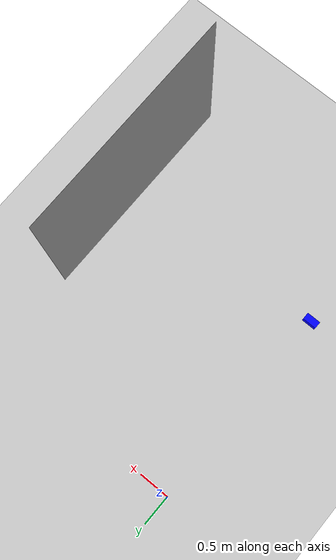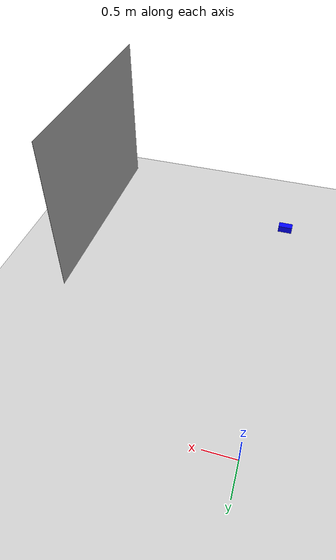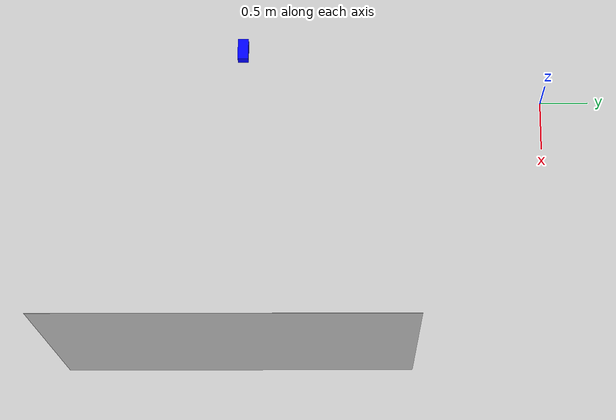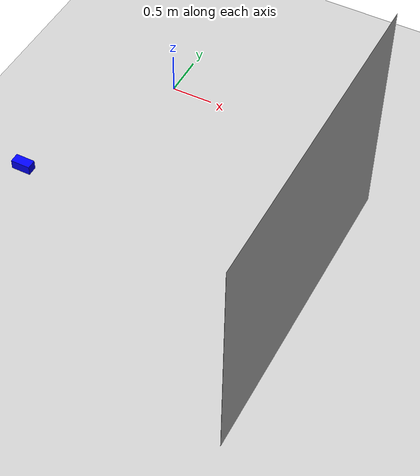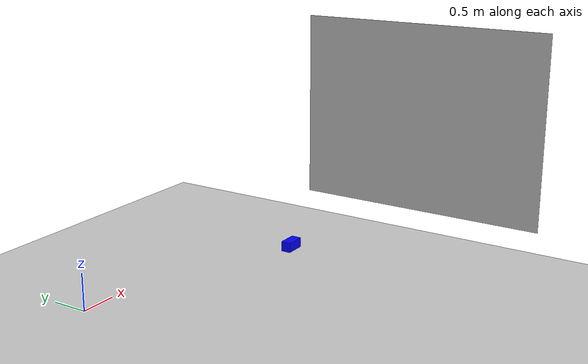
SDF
<!-- 声明这是一个 SDF 仿真世界文件，版本使用 Gazebo 11 支持的 1.6。 -->
<sdf version="1.6">
  <!-- 定义一个名为 yolo_camera_world 的 Gazebo 世界。 -->
  <world name="yolo_camera_world">
    <!-- 引入太阳光模型，让仿真世界中有基础光照。 -->
    <include>
      <!-- 使用 Gazebo 默认模型库中的 sun。 -->
      <uri>model://sun</uri>
    </include>
    <!-- 引入地面模型，让相机前方有可见参考平面。 -->
    <include>
      <!-- 使用 Gazebo 默认模型库中的 ground_plane。 -->
      <uri>model://ground_plane</uri>
    </include>
    <!-- 创建一个静态模型，用来承载虚拟相机。 -->
    <model name="fixed_camera_model">
      <!-- 设置为静态模型，表示它不会受重力或碰撞影响而移动。 -->
      <static>true</static>
      <!-- 创建一个相机所在的刚体链接。 -->
      <link name="camera_link">
        <!-- 设置相机位置和姿态：x=0，y=-3，z=1.5，朝向世界前方。 -->
        <pose>0 -3 1.5 0 0 0</pose>
        <!-- 给相机链接添加一个可见的小盒子，方便在 Gazebo GUI 中识别相机位置。 -->
        <visual name="camera_body_visual">
          <!-- 定义小盒子的形状。 -->
          <geometry>
            <!-- 使用盒子几何体表示相机外壳。 -->
            <box>
              <!-- 设置盒子长宽高，单位是米。 -->
              <size>0.2 0.1 0.1</size>
            </box>
          </geometry>
          <!-- 设置相机外壳颜色。 -->
          <material>
            <!-- 设置漫反射颜色为蓝色。 -->
            <ambient>0.0 0.0 1.0 1.0</ambient>
            <!-- 设置受光照影响时的颜色为蓝色。 -->
            <diffuse>0.0 0.0 1.0 1.0</diffuse>
          </material>
        </visual>
        <!-- 在这个链接上安装一个虚拟相机传感器。 -->
        <sensor name="camera_sensor" type="camera">
          <!-- 设置相机始终开启。 -->
          <always_on>true</always_on>
          <!-- 设置相机每秒产生 5 帧图像。 -->
          <update_rate>5</update_rate>
          <!-- 设置相机本身的成像参数。 -->
          <camera>
            <!-- 设置水平视场角，单位是弧度，1.047 约等于 60 度。 -->
            <horizontal_fov>1.047</horizontal_fov>
            <!-- 设置输出图像参数。 -->
            <image>
              <!-- 设置图像宽度为 640 像素。 -->
              <width>640</width>
              <!-- 设置图像高度为 480 像素。 -->
              <height>480</height>
              <!-- 设置图像颜色格式为 RGB 8 位三通道。 -->
              <format>R8G8B8</format>
            </image>
            <!-- 设置相机能看到的最近和最远距离。 -->
            <clip>
              <!-- 设置最近可见距离为 0.1 米。 -->
              <near>0.1</near>
              <!-- 设置最远可见距离为 100 米。 -->
              <far>100</far>
            </clip>
          </camera>
          <!-- 加载 Gazebo ROS 相机插件，把 Gazebo 图像发布成 ROS 话题。 -->
          <plugin name="gazebo_ros_camera" filename="libgazebo_ros_camera.so">
            <!-- 设置插件始终开启。 -->
            <alwaysOn>true</alwaysOn>
            <!-- 设置插件发布频率为每秒 5 帧。 -->
            <updateRate>5.0</updateRate>
            <!-- 设置相机名称，最终会影响 ROS 话题命名空间。 -->
            <cameraName>sim_camera</cameraName>
            <!-- 设置图像话题名称，通常会和 cameraName 组合成 /sim_camera/image_raw。 -->
            <imageTopicName>image_raw</imageTopicName>
            <!-- 设置相机内参话题名称，通常会组合成 /sim_camera/camera_info。 -->
            <cameraInfoTopicName>camera_info</cameraInfoTopicName>
            <!-- 设置图像消息 header.frame_id 使用的坐标系名称。 -->
            <frameName>sim_camera_link</frameName>
          </plugin>
        </sensor>
      </link>
    </model>
    <!-- 引入公交车图片平面模型，让 YOLO 预训练模型能看到熟悉的公交车和人。 -->
    <include>
      <!-- 指定要加载的本地 Gazebo 模型名称。 -->
      <uri>model://bus_billboard</uri>
      <!-- 设置图片平面位置：放在相机前方，并和相机保持同一 y 坐标。 -->
      <pose>3 -3 1.0 0 0 0</pose>
    <!-- 结束公交车图片平面模型引入。 -->
    </include>
  </world>
</sdf>

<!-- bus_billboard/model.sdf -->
<!-- 声明这是一个 SDF 模型文件，版本使用 Gazebo 11 支持的 1.6。 -->
<sdf version="1.6">
  <!-- 定义一个名为 bus_billboard 的模型。 -->
  <model name="bus_billboard">
    <!-- 设置为静态模型，表示图片平面不会受重力或碰撞影响。 -->
    <static>true</static>
    <!-- 创建承载图片平面的刚体链接。 -->
    <link name="billboard_link">
      <!-- 定义可视元素，用于让相机看到贴图平面。 -->
      <visual name="bus_image_visual">
        <!-- 设置平面姿态，让平面变成竖直画面并朝向相机。 -->
        <pose>0 0 1.2 0 -1.5708 0</pose>
        <!-- 定义几何形状。 -->
        <geometry>
          <!-- 使用平面几何体承载图片纹理。 -->
          <plane>
            <!-- 设置平面法向量沿 z 轴，后续通过 pose 把它转成竖直方向。 -->
            <normal>0 0 1</normal>
            <!-- 设置平面宽 2.4 米、高 3.2 米，比例接近 bus.jpg 的宽高比。 -->
            <size>2.4 3.2</size>
          <!-- 结束平面几何体定义。 -->
          </plane>
        <!-- 结束几何定义。 -->
        </geometry>
        <!-- 定义平面材质，让它显示公交车图片。 -->
        <material>
          <!-- 使用 Gazebo/Ogre 材质脚本。 -->
          <script>
            <!-- 指定材质脚本所在目录。 -->
            <uri>model://bus_billboard/materials/scripts</uri>
            <!-- 指定纹理图片所在目录，让材质脚本中的 bus.jpg 能被找到。 -->
            <uri>model://bus_billboard/materials/textures</uri>
            <!-- 指定材质脚本中定义的材质名称。 -->
            <name>YoloCourse/BusBillboard</name>
          <!-- 结束材质脚本定义。 -->
          </script>
        <!-- 结束材质定义。 -->
        </material>
      <!-- 结束可视元素定义。 -->
      </visual>
    <!-- 结束链接定义。 -->
    </link>
  <!-- 结束模型定义。 -->
  </model>
<!-- 结束 SDF 文件。 -->
</sdf>
